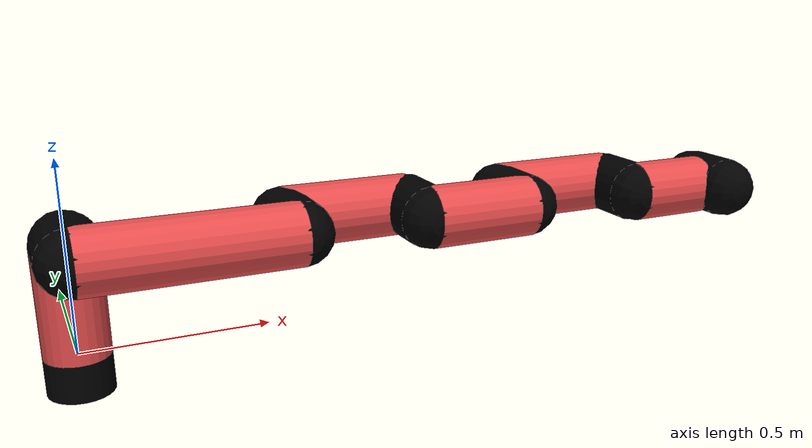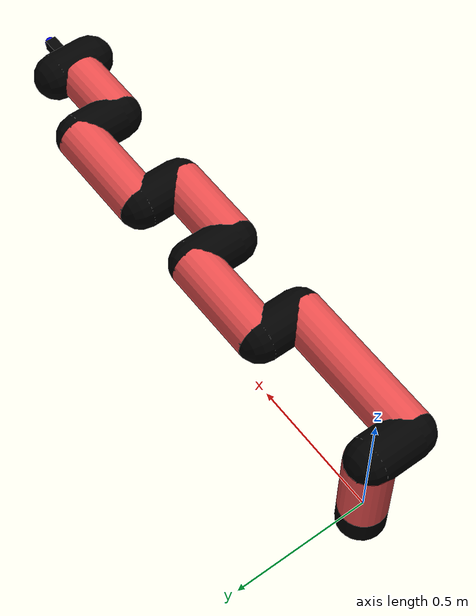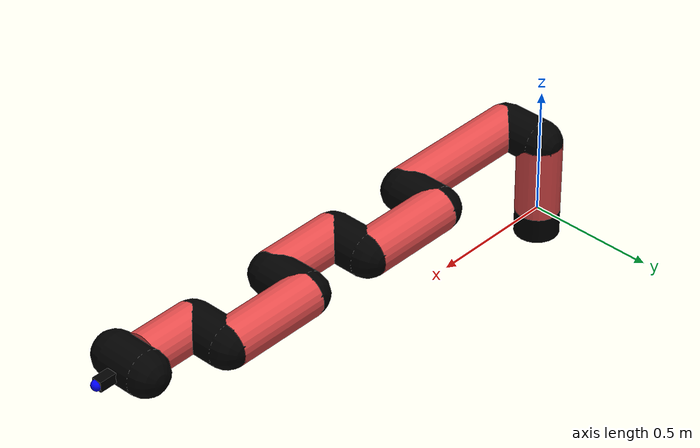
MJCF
<mujoco model="manipulator">
		<compiler angle="degree" coordinate="local" inertiafromgeom="auto" meshdir="meshes/"/>
		<option gravity="0 0 0" integrator="RK4" iterations="30" timestep="0.01"/>

		<default>
		<joint armature="1" limited="true" stiffness="10" damping="15" frictionloss="5.0"/>
		<geom conaffinity="1" condim="3" contype="1" friction=".5 .1 .1" margin="0.002"/>
		<motor ctrllimited="true"/>
		<position ctrllimited="true"/>
		</default>

		<asset>
		<texture builtin="gradient" height="100" rgb1="1.0 1.0 1.0" rgb2="1.0 1.0 1.0" type="skybox" width="100"/>
		<texture builtin="flat" height="32" name="arm_tex" rgb1="0.9 0.3 0.3" type="2d" width="32"/>
		<texture builtin="flat" height="32" name="gripper_tex" rgb1="0.0 0.0 0.0" type="cube" width="32"/>

		<material name="arm_mat" shininess="0.1" specular="0.1" texture="arm_tex"/>
		<material name="gripper_mat" shininess="1" specular="1" texture="gripper_tex"/>
		</asset>

		<worldbody>
		<light cutoff="45" diffuse=".8 .8 .8" dir="0 0.16 -1" directional="false" name="light" pos="0 -2.0 8.0" specular="0.3 0.3 0.3"/>

		<body name="base_link" pos="0 0 -0.1">
		<geom fromto="0 0 0 0 0 0.1" material="arm_mat" name="base_link" rgba="0.0 0.0 0.0 1" size="0.085" type="cylinder"/>
		</body>

		<body name="l1" pos="0 0 0">
<geom fromto="0 0 0 0 0 0.29" material="arm_mat" name="l1" rgba="0.9 0.3 0.3 1" size="0.085" type="cylinder"/>
<geom fromto="0 0 0.29 0 -0.16 0.29" material="arm_mat" name="l1_ex" rgba="0.0 0.0 0.0 1" size="0.085" type="capsule"/>
<joint axis="0 0 1" name="j1" pos="0 0 0" range="-90 90" damping="27.31" frictionloss="9.73"/>

<body name="l2" pos="0 -0.16 0.29">
<geom fromto="0 0 0 0.55 0 0" material="arm_mat" name="l2" rgba="0.9 0.3 0.3 1" size="0.085" type="cylinder"/>
<geom fromto="0.55 0 0 0.55 0.16 0" material="arm_mat" name="l2_ex" rgba="0.0 0.0 0.0 1" size="0.085" type="capsule"/>
<joint axis="0.0 1.0 0.0" name="j2" pos="0 0 0" range="-90 60" damping="31.18" frictionloss="12.35"/>

<body name="l3" pos="0.55 0.16 0">
<geom fromto="0 0 0 0.36 0 0" material="arm_mat" name="l3" rgba="0.9 0.3 0.3 1" size="0.085" type="cylinder"/>
<geom fromto="0.36 0 0 0.36 -0.16 0" material="arm_mat" name="l3_ex" rgba="0.0 0.0 0.0 1" size="0.085" type="capsule"/>
<joint axis="0.0 1.0 0.0" name="j3" pos="0 0 0" range="-30 60" damping="30.33" frictionloss="8.72"/>

<body name="l4" pos="0.36 -0.16 0">
<geom fromto="0 0 0 0.3 0 0" material="arm_mat" name="l4" rgba="0.9 0.3 0.3 1" size="0.085" type="cylinder"/>
<geom fromto="0.3 0 0 0.3 0.16 0" material="arm_mat" name="l4_ex" rgba="0.0 0.0 0.0 1" size="0.085" type="capsule"/>
<joint axis="0.0 1.0 0.0" name="j4" pos="0 0 0" range="-30 60" damping="30.21" frictionloss="12.2"/>

<body name="l5" pos="0.3 0.16 0">
<geom fromto="0 0 0 0.37 0 0" material="arm_mat" name="l5" rgba="0.9 0.3 0.3 1" size="0.085" type="cylinder"/>
<geom fromto="0.37 0 0 0.37 -0.16 0" material="arm_mat" name="l5_ex" rgba="0.0 0.0 0.0 1" size="0.085" type="capsule"/>
<joint axis="0.0 1.0 0.0" name="j5" pos="0 0 0" range="-30 60" damping="24.76" frictionloss="10.7"/>

<body name="l6" pos="0.37 -0.16 0">
<geom fromto="0 0 0 0.23 0 0" material="arm_mat" name="l6" rgba="0.9 0.3 0.3 1" size="0.085" type="cylinder"/>
<joint axis="0.0 1.0 0.0" name="j6" pos="0 0 0" range="-30 60" damping="22.56" frictionloss="9.35"/>

<body name="gripper" pos="0.23 0 0">
<geom fromto="0.05 -0.07 0 0.05 0.07 0" material="gripper_mat" name="gripper" rgba="0.0 0.0 0.0 1" size="0.085" type="capsule"/><joint axis="1 0 0" name="j7" pos="0 0 0" range="-90 90" damping="15" frictionloss="5.0"/><body name="finger" pos="0.1 0 0">
<geom fromto="0 0.0 0 0.1 0.0 0" material="gripper_mat" name="finger" rgba="0.0 0.0 0.0 1" size="0.020 0.06 0.06" type="box"/>
</body>
<site name="current" pos="0.2 0. 0.0" rgba="0. 0. 1.0 1" size="0.02" type="sphere"/>
</body>
</body>
</body>
</body>
</body>
</body>
</body>
</worldbody>
<actuator>
<motor ctrllimited="true" ctrlrange="-1.0 1.0" joint="j1" gear="80.08"/>
<motor ctrllimited="true" ctrlrange="-1.0 1.0" joint="j2" gear="97.79"/>
<motor ctrllimited="true" ctrlrange="-1.0 1.0" joint="j3" gear="78.09"/>
<motor ctrllimited="true" ctrlrange="-1.0 1.0" joint="j4" gear="86.82"/>
<motor ctrllimited="true" ctrlrange="-1.0 1.0" joint="j5" gear="70.6"/>
<motor ctrllimited="true" ctrlrange="-1.0 1.0" joint="j6" gear="67.36"/>
<motor ctrllimited="true" ctrlrange="-1.0 1.0" joint="j7" gear="80"/>
</actuator>
</mujoco>
